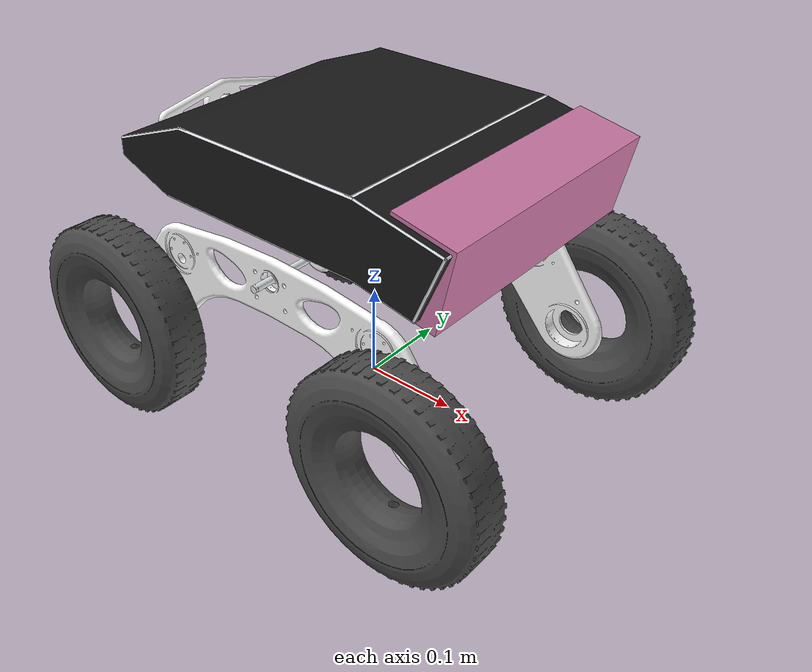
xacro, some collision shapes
<?xml version="1.0" encoding="UTF-8"?>

 <robot name="roly_v2" xmlns:xacro="http://www.ros.org/wiki/xacro">

      <xacro:property name="camera_link" value="0.05" /> <!-- Size of square 'camera' box -->

      <!-- Included URDF/XACRO Files -->
      <xacro:include filename="$(find roly_v2)/urdf/wheel.urdf.xacro" />

      <xacro:property name="M_PI" value="3.14159"/>

      <material name="black"><color rgba="0.0 0.0 0.0 1.0"/></material>
      <material name="blue"><color rgba="0.203125 0.23828125 0.28515625 1.0"/></material>
      <material name="green"><color rgba="0.0 0.8 0.0 1.0"/></material>
      <material name="grey"><color rgba="0.2 0.2 0.2 1.0"/></material>
      <material name="orange"><color rgba="1.0 0.423529411765 0.0392156862745 1.0"/></material>
      <material name="brown"><color rgba="0.870588235294 0.811764705882 0.764705882353 1.0"/></material>
      <material name="red"><color rgba="0.80078125 0.12890625 0.1328125 1.0"/></material>
      <material name="white"><color rgba="1.0 1.0 1.0 1.0"/></material>

     <!-- Wheel Mounting Positions -->
    <xacro:property name="wheelbase" value="0.276" />
    <xacro:property name="track" value="0.22" />
    <xacro:property name="wheel_vertical_offset" value="0.03282" />

       <!-- Wheel Properties -->
    <xacro:property name="wheel_length" value="0.0741359" />
    <xacro:property name="wheel_radius" value="0.106478" />

    <xacro:arg name="kinect_xyz" default="$(optenv HUSKY_KINECT_XYZ 0.13 0.045 0.22)" />
    <xacro:arg name="kinect_rpy" default="$(optenv HUSKY_KINECT_RPY 0 0.2 ${2*M_PI})" />

  <!--Base link-->

      <link name="base_link">
        <visual>
          <origin xyz="-0.5 0 0.4" rpy="3.1416 -1.57 0" />
          <geometry>
            <mesh filename="package://roly_v2/meshes/base_link.dae" />
          </geometry>
        </visual>

        <visual>
          <origin xyz="-0.045 -0.35 0.04" rpy="-1.57 -3.1416 0" />
          <geometry>
            <mesh filename="package://roly_v2/meshes/porta1.dae" />
          </geometry>
        </visual>

        <visual>
          <origin xyz="-0.045 -0.09 0.04" rpy="-1.57 -3.1416 0" />
          <geometry>
            <mesh filename="package://roly_v2/meshes/porta1.dae" />
          </geometry>
        </visual>

        <visual>
          <origin xyz="-0.055 0.195 0.134" rpy="0 0 3.1416" />
          <geometry>
            <mesh filename="package://roly_v2/meshes/ejepivote.dae" />
          </geometry>
        </visual>

        <collision name="collision_base">
          <origin xyz="-0.05 0.04 0.22" rpy="0 0 0" />
          <geometry>
            <box size="0.5 0.3 0.07"/>
          </geometry>
        </collision>
      </link>

          <link name="inertial_link">
          <inertial>
          <mass value="5"/>
          <origin rpy="0 0 0" xyz="-0.03 0.04 0.225"/>
          <inertia ixx="0.0395416666667" ixy="0" ixz="0" iyy="0.106208333333" iyz="0" izz="0.1416666667"/>
        </inertial>

        </link>

        <joint name="inertial_joint" type="fixed">
        <origin xyz="0 0 0" rpy="0 0 0" />
        <parent link="base_link" />
        <child link="inertial_link" />
      </joint>

        <!-- Husky wheel macros -->
    <xacro:roly_wheel wheel_prefix="front_left">
      <origin xyz="${wheelbase/2} ${track} ${wheel_vertical_offset}" rpy="0 0 0" />
    </xacro:roly_wheel>
    <xacro:roly_wheel wheel_prefix="front_right">
      <origin xyz="${wheelbase/2} ${track - 0.36} ${wheel_vertical_offset}" rpy="0 0 0" />
    </xacro:roly_wheel>
    <xacro:roly_wheel wheel_prefix="rear_left">
      <origin xyz="${-(wheelbase-0.031)} ${track} ${wheel_vertical_offset}" rpy="0 0 0" />
    </xacro:roly_wheel>
    <xacro:roly_wheel wheel_prefix="rear_right">
      <origin xyz="${-(wheelbase-0.031)} ${track - 0.36} ${wheel_vertical_offset}" rpy="0 0 0" />
    </xacro:roly_wheel>

    <joint name="kinect_frame_joint" type="fixed">
      <origin xyz="$(arg kinect_xyz)" rpy="$(arg kinect_rpy)" />
      <parent link="base_link" />
      <child link="camera_link" />
    </joint>

    <link name="camera_link">
      <origin xyz="0 0 0" rpy="0 0 0"/>
      <visual>
        <origin xyz="0 0 0" rpy="0 0 ${2*M_PI}"/>
        <geometry>
          <mesh filename="package://roly_v2/meshes/kinect.dae" />
        </geometry>
      </visual>
      <collision>
        <geometry>
          <box size="0.07 0.3 0.09"/>
        </geometry>
      </collision>
    </link>

    <joint name="camera_optical_joint" type="fixed">
      <origin xyz="0 0 0" rpy="-1.5708 0 -1.5708"/>
      <parent link="camera_link"/>
      <child link="camera_frame_optical"/>
    </joint>

    <link name="camera_frame_optical"/>

    <gazebo reference="camera_link">
      <sensor type="depth" name="camera1">
        <always_on>true</always_on>
        <update_rate>20.0</update_rate>

        <camera>
          <horizontal_fov>${60.0*M_PI/180.0}</horizontal_fov>
          <image>
            <format>R8G8B8</format>
            <width>640</width>
            <height>480</height>
          </image>
          <clip>
            <near>0.05</near>
            <far>8.0</far>
          </clip>
        </camera>

        <plugin name="kinect_camera_controller" filename="libgazebo_ros_openni_kinect.so">
          <cameraName>/roly_v2/camera</cameraName>
          <alwaysOn>true</alwaysOn>
          <updateRate>10</updateRate>
          <imageTopicName>rgb/image_raw</imageTopicName>
          <depthImageTopicName>depth/image_raw</depthImageTopicName>
          <pointCloudTopicName>depth/points</pointCloudTopicName>
          <cameraInfoTopicName>rgb/camera_info</cameraInfoTopicName>
          <depthImageCameraInfoTopicName>depth/camera_info</depthImageCameraInfoTopicName>
          <frameName>camera_frame_optical</frameName>
          <baseline>0.1</baseline>
          <distortion_k1>0.0</distortion_k1>
          <distortion_k2>0.0</distortion_k2>
          <distortion_k3>0.0</distortion_k3>
          <distortion_t1>0.0</distortion_t1>
          <distortion_t2>0.0</distortion_t2>
          <pointCloudCutoff>0.4</pointCloudCutoff>
          <robotNamespace>/</robotNamespace>
        </plugin>
      </sensor>
    </gazebo>

    <gazebo>
     <plugin name="gazebo_ros_control" filename="libgazebo_ros_control.so">
      <robotNamespace>/</robotNamespace>
      <legacynodens>true</legacynodens>
     </plugin>
    </gazebo>

  </robot>

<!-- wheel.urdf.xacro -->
<robot xmlns:xacro="http://www.ros.org/wiki/xacro" name="roly_wheel">

			<xacro:macro name="roly_wheel" params="wheel_prefix *joint_pose">

				<link name="${wheel_prefix}_wheel_link">

				<inertial>
					<mass value="0.2" />
					<origin xyz="0 0 0" rpy="${M_PI/2} 0 0"/>
					<inertia ixx="0.000658478" ixy="0" ixz="0" iyy="0.000658478" iyz="0" izz="0.001133756"/>
				</inertial>

				<visual>
					<origin xyz="0 0 0" rpy="0 0 0" />
					<geometry>
						<mesh filename="package://roly_v2/meshes/Llanta.dae" />
					</geometry>
				</visual>

				<collision>
					<origin xyz="0 0 0" rpy="${M_PI/2} 0 0" />
					<geometry>
						<cylinder length="${wheel_length}" radius="${wheel_radius}" />
					</geometry>
				</collision>

			</link>
			<joint name="${wheel_prefix}_wheel" type="continuous">
				<parent link="base_link"/>
				<child link="${wheel_prefix}_wheel_link"/>
				<xacro:insert_block name="joint_pose"/>
				<axis xyz="0 1 0" rpy="0 0 0" />
			</joint>
			<transmission name="${wheel_prefix}_wheel_trans" type="SimpleTransmission">
				<type>transmission_interface/SimpleTransmission</type>
				<actuator name="${wheel_prefix}_wheel_motor">
					<mechanicalReduction>1</mechanicalReduction>
				</actuator>
				<joint name="${wheel_prefix}_wheel">
					<hardwareInterface>hardware_interface/VelocityJointInterface</hardwareInterface>
				</joint>
			</transmission>

		</xacro:macro>

</robot>
